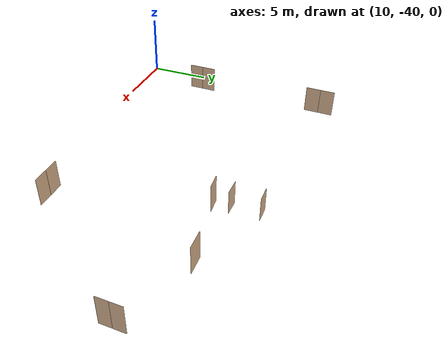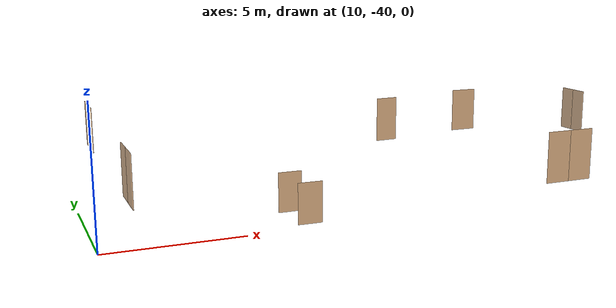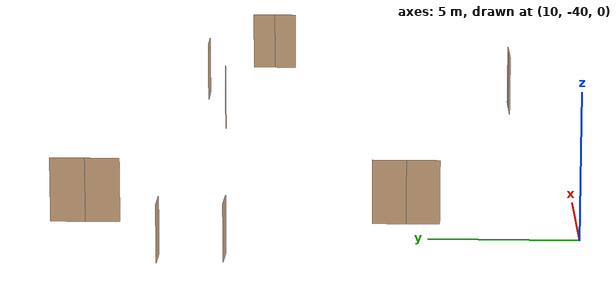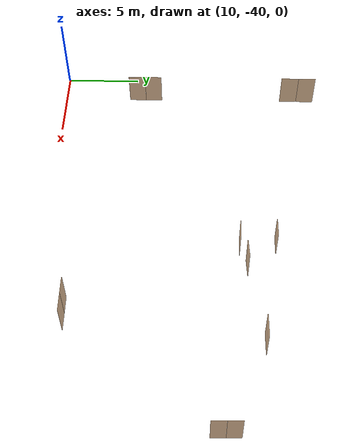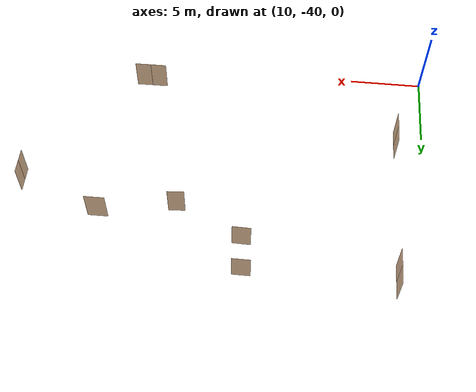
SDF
<sdf version="1.7">
 <world name="sim_world">
  <model name="puerta1">
   <pose>11.962999429963212 -23.477530657144076 0.0 0 0 1.565005116263231</pose>
   <link name="right">
    <pose>0.5918117585810255 0 1.11 0 0 0</pose>
    <visual name="right_visual">
     <geometry><box><size>1.173623517162051 0.03 2.2</size></box></geometry>
     <material>
      <ambient>0.5 0.25 0 0.6</ambient>
      <diffuse>0.5 0.25 0 0.6</diffuse>
      <pbr><metal><metalness>0.0</metalness></metal></pbr>
     </material>
    </visual>
    <collision name="right_collision">
     <geometry><box><size>1.173623517162051 0.03 2.2</size></box></geometry>
     <surface><contact><collide_bitmask>0x02</collide_bitmask></contact></surface>
    </collision>
    <inertial>
     <mass>50.0</mass>
     <inertia><ixx>20.17041666666667</ixx><iyy>25.905800666815935</iyy><izz>5.742884000149264</izz></inertia>
    </inertial>
   </link>
   <joint name="right_joint" type="revolute">
    <parent>world</parent>
    <child>right</child>
    <axis><xyz>0 0 1</xyz><limit><lower>0</lower><upper>1.57</upper></limit></axis>
    <pose>0.5918117585810255 0 0 0 0 0</pose>
   </joint>
   <link name="left">
    <pose>-0.5918117585810255 0 1.11 0 0 0</pose>
    <visual name="left_visual">
     <geometry><box><size>1.173623517162051 0.03 2.2</size></box></geometry>
     <material>
      <ambient>0.5 0.25 0 0.6</ambient>
      <diffuse>0.5 0.25 0 0.6</diffuse>
      <pbr><metal><metalness>0.0</metalness></metal></pbr>
     </material>
    </visual>
    <collision name="left_collision">
     <geometry><box><size>1.173623517162051 0.03 2.2</size></box></geometry>
     <surface><contact><collide_bitmask>0x02</collide_bitmask></contact></surface>
    </collision>
    <inertial>
     <mass>50.0</mass>
     <inertia><ixx>20.17041666666667</ixx><iyy>25.905800666815935</iyy><izz>5.742884000149264</izz></inertia>
    </inertial>
   </link>
   <joint name="left_joint" type="revolute">
    <parent>world</parent>
    <child>left</child>
    <axis><xyz>0 0 1</xyz><limit><lower>-1.57</lower><upper>0</upper></limit></axis>
    <pose>-0.5918117585810255 0 0 0 0 0</pose>
   </joint>
   <plugin name="register_component" filename="libregister_component.so">
    <component name="Door">
     <v_max_door>0.5</v_max_door>
     <a_max_door>0.3</a_max_door>
     <a_nom_door>0.15</a_nom_door>
     <dx_min_door>0.01</dx_min_door>
     <f_max_door>500.0</f_max_door>
     <ros_interface>true</ros_interface>
     <door name="puerta1" type="DoubleSwingDoor" left_joint_name="left_joint" right_joint_name="right_joint"/>
    </component>
   </plugin>
  </model>
  <model name="puerta7">
   <pose>11.955897525286552 -34.2723433223252 0.0 0 0 -1.5739164575395352</pose>
   <link name="right">
    <pose>0.5718709967881908 0 1.11 0 0 0</pose>
    <visual name="right_visual">
     <geometry><box><size>1.1337419935763815 0.03 2.2</size></box></geometry>
     <material>
      <ambient>0.5 0.25 0 0.6</ambient>
      <diffuse>0.5 0.25 0 0.6</diffuse>
      <pbr><metal><metalness>0.0</metalness></metal></pbr>
     </material>
    </visual>
    <collision name="right_collision">
     <geometry><box><size>1.1337419935763815 0.03 2.2</size></box></geometry>
     <surface><contact><collide_bitmask>0x02</collide_bitmask></contact></surface>
    </collision>
    <inertial>
     <mass>50.0</mass>
     <inertia><ixx>20.17041666666667</ixx><iyy>25.522378783327287</iyy><izz>5.359462116660616</izz></inertia>
    </inertial>
   </link>
   <joint name="right_joint" type="revolute">
    <parent>world</parent>
    <child>right</child>
    <axis><xyz>0 0 -1</xyz><limit><lower>0</lower><upper>1.57</upper></limit></axis>
    <pose>0.5718709967881908 0 0 0 0 0</pose>
   </joint>
   <link name="left">
    <pose>-0.5718709967881908 0 1.11 0 0 0</pose>
    <visual name="left_visual">
     <geometry><box><size>1.1337419935763815 0.03 2.2</size></box></geometry>
     <material>
      <ambient>0.5 0.25 0 0.6</ambient>
      <diffuse>0.5 0.25 0 0.6</diffuse>
      <pbr><metal><metalness>0.0</metalness></metal></pbr>
     </material>
    </visual>
    <collision name="left_collision">
     <geometry><box><size>1.1337419935763815 0.03 2.2</size></box></geometry>
     <surface><contact><collide_bitmask>0x02</collide_bitmask></contact></surface>
    </collision>
    <inertial>
     <mass>50.0</mass>
     <inertia><ixx>20.17041666666667</ixx><iyy>25.522378783327287</iyy><izz>5.359462116660616</izz></inertia>
    </inertial>
   </link>
   <joint name="left_joint" type="revolute">
    <parent>world</parent>
    <child>left</child>
    <axis><xyz>0 0 -1</xyz><limit><lower>-1.57</lower><upper>0</upper></limit></axis>
    <pose>-0.5718709967881908 0 0 0 0 0</pose>
   </joint>
   <plugin name="register_component" filename="libregister_component.so">
    <component name="Door">
     <v_max_door>0.5</v_max_door>
     <a_max_door>0.3</a_max_door>
     <a_nom_door>0.15</a_nom_door>
     <dx_min_door>0.01</dx_min_door>
     <f_max_door>500.0</f_max_door>
     <ros_interface>true</ros_interface>
     <door name="puerta7" type="DoubleSwingDoor" left_joint_name="left_joint" right_joint_name="right_joint"/>
    </component>
   </plugin>
  </model>
  <model name="puerta6">
   <pose>29.790228815595462 -38.21295820829428 0.0 0 0 0.010102703109197853</pose>
   <link name="right">
    <pose>0.5549249820248885 0 1.11 0 0 0</pose>
    <visual name="right_visual">
     <geometry><box><size>1.099849964049777 0.03 2.2</size></box></geometry>
     <material>
      <ambient>0.5 0.25 0 0.6</ambient>
      <diffuse>0.5 0.25 0 0.6</diffuse>
      <pbr><metal><metalness>0.0</metalness></metal></pbr>
     </material>
    </visual>
    <collision name="right_collision">
     <geometry><box><size>1.099849964049777 0.03 2.2</size></box></geometry>
     <surface><contact><collide_bitmask>0x02</collide_bitmask></contact></surface>
    </collision>
    <inertial>
     <mass>50.0</mass>
     <inertia><ixx>20.17041666666667</ixx><iyy>25.206958097584568</iyy><izz>5.044041430917899</izz></inertia>
    </inertial>
   </link>
   <joint name="right_joint" type="revolute">
    <parent>world</parent>
    <child>right</child>
    <axis><xyz>0 0 -1</xyz><limit><lower>0</lower><upper>1.57</upper></limit></axis>
    <pose>0.5549249820248885 0 0 0 0 0</pose>
   </joint>
   <link name="left">
    <pose>-0.5549249820248885 0 1.11 0 0 0</pose>
    <visual name="left_visual">
     <geometry><box><size>1.099849964049777 0.03 2.2</size></box></geometry>
     <material>
      <ambient>0.5 0.25 0 0.6</ambient>
      <diffuse>0.5 0.25 0 0.6</diffuse>
      <pbr><metal><metalness>0.0</metalness></metal></pbr>
     </material>
    </visual>
    <collision name="left_collision">
     <geometry><box><size>1.099849964049777 0.03 2.2</size></box></geometry>
     <surface><contact><collide_bitmask>0x02</collide_bitmask></contact></surface>
    </collision>
    <inertial>
     <mass>50.0</mass>
     <inertia><ixx>20.17041666666667</ixx><iyy>25.206958097584568</iyy><izz>5.044041430917899</izz></inertia>
    </inertial>
   </link>
   <joint name="left_joint" type="revolute">
    <parent>world</parent>
    <child>left</child>
    <axis><xyz>0 0 -1</xyz><limit><lower>-1.57</lower><upper>0</upper></limit></axis>
    <pose>-0.5549249820248885 0 0 0 0 0</pose>
   </joint>
   <plugin name="register_component" filename="libregister_component.so">
    <component name="Door">
     <v_max_door>0.5</v_max_door>
     <a_max_door>0.3</a_max_door>
     <a_nom_door>0.15</a_nom_door>
     <dx_min_door>0.01</dx_min_door>
     <f_max_door>500.0</f_max_door>
     <ros_interface>true</ros_interface>
     <door name="puerta6" type="DoubleSwingDoor" left_joint_name="left_joint" right_joint_name="right_joint"/>
    </component>
   </plugin>
  </model>
  <model name="puertaB4">
   <pose>37.19075503964348 -28.809400424936527 0.0 0 0 -1.560095286636433</pose>
   <link name="right">
    <pose>0.432546071391894 0 1.11 0 0 0</pose>
    <visual name="right_visual">
     <geometry><box><size>0.855092142783788 0.03 2.2</size></box></geometry>
     <material>
      <ambient>0.5 0.25 0 0.6</ambient>
      <diffuse>0.5 0.25 0 0.6</diffuse>
      <pbr><metal><metalness>0.0</metalness></metal></pbr>
     </material>
    </visual>
    <collision name="right_collision">
     <geometry><box><size>0.855092142783788 0.03 2.2</size></box></geometry>
     <surface><contact><collide_bitmask>0x02</collide_bitmask></contact></surface>
    </collision>
    <inertial>
     <mass>50.0</mass>
     <inertia><ixx>20.17041666666667</ixx><iyy>23.21326071937738</iyy><izz>3.050344052710709</izz></inertia>
    </inertial>
   </link>
   <joint name="right_joint" type="revolute">
    <parent>world</parent>
    <child>right</child>
    <axis><xyz>0 0 -1</xyz><limit><lower>0</lower><upper>1.57</upper></limit></axis>
    <pose>0.432546071391894 0 0 0 0 0</pose>
   </joint>
   <link name="left">
    <pose>-0.432546071391894 0 1.11 0 0 0</pose>
    <visual name="left_visual">
     <geometry><box><size>0.855092142783788 0.03 2.2</size></box></geometry>
     <material>
      <ambient>0.5 0.25 0 0.6</ambient>
      <diffuse>0.5 0.25 0 0.6</diffuse>
      <pbr><metal><metalness>0.0</metalness></metal></pbr>
     </material>
    </visual>
    <collision name="left_collision">
     <geometry><box><size>0.855092142783788 0.03 2.2</size></box></geometry>
     <surface><contact><collide_bitmask>0x02</collide_bitmask></contact></surface>
    </collision>
    <inertial>
     <mass>50.0</mass>
     <inertia><ixx>20.17041666666667</ixx><iyy>23.21326071937738</iyy><izz>3.050344052710709</izz></inertia>
    </inertial>
   </link>
   <joint name="left_joint" type="revolute">
    <parent>world</parent>
    <child>left</child>
    <axis><xyz>0 0 -1</xyz><limit><lower>-1.57</lower><upper>0</upper></limit></axis>
    <pose>-0.432546071391894 0 0 0 0 0</pose>
   </joint>
   <plugin name="register_component" filename="libregister_component.so">
    <component name="Door">
     <v_max_door>0.5</v_max_door>
     <a_max_door>0.3</a_max_door>
     <a_nom_door>0.15</a_nom_door>
     <dx_min_door>0.01</dx_min_door>
     <f_max_door>500.0</f_max_door>
     <ros_interface>true</ros_interface>
     <door name="puertaB4" type="DoubleSwingDoor" left_joint_name="left_joint" right_joint_name="right_joint"/>
    </component>
   </plugin>
  </model>
  <model name="puertaEA">
   <pose>26.458987972694775 -27.398771358713326 0.0 0 0 0.06506101426287529</pose>
   <link name="right">
    <pose>0 0 1.11 0 0 0</pose>
    <visual name="right_visual">
     <geometry><box><size>1.1211130812435688 0.03 2.2</size></box></geometry>
     <material>
      <ambient>0.5 0.25 0 0.6</ambient>
      <diffuse>0.5 0.25 0 0.6</diffuse>
      <pbr><metal><metalness>0.0</metalness></metal></pbr>
     </material>
    </visual>
    <collision name="right_collision">
     <geometry><box><size>1.1211130812435688 0.03 2.2</size></box></geometry>
     <surface><contact><collide_bitmask>0x02</collide_bitmask></contact></surface>
    </collision>
    <inertial>
     <mass>50.0</mass>
     <inertia><ixx>20.17041666666667</ixx><iyy>25.40372725389771</iyy><izz>5.240810587231037</izz></inertia>
    </inertial>
   </link>
   <joint name="right_joint" type="revolute">
    <parent>world</parent>
    <child>right</child>
    <axis><xyz>0 0 -1</xyz><limit><lower>0</lower><upper>1.57</upper></limit></axis>
    <pose>0.5655565406217844 0 0 0 0 0</pose>
   </joint>
   <plugin name="register_component" filename="libregister_component.so">
    <component name="Door">
     <v_max_door>0.5</v_max_door>
     <a_max_door>0.3</a_max_door>
     <a_nom_door>0.15</a_nom_door>
     <dx_min_door>0.01</dx_min_door>
     <f_max_door>500.0</f_max_door>
     <ros_interface>true</ros_interface>
     <door name="puertaEA" type="SwingDoor" left_joint_name="empty_joint" right_joint_name="right_joint"/>
    </component>
   </plugin>
  </model>
  <model name="puerta2">
   <pose>31.62593573188485 -26.463345691982276 0.0 0 0 0.010278512859814274</pose>
   <link name="right">
    <pose>0 0 1.11 0 0 0</pose>
    <visual name="right_visual">
     <geometry><box><size>1.355875595919269 0.03 2.2</size></box></geometry>
     <material>
      <ambient>0.5 0.25 0 0.6</ambient>
      <diffuse>0.5 0.25 0 0.6</diffuse>
      <pbr><metal><metalness>0.0</metalness></metal></pbr>
     </material>
    </visual>
    <collision name="right_collision">
     <geometry><box><size>1.355875595919269 0.03 2.2</size></box></geometry>
     <surface><contact><collide_bitmask>0x02</collide_bitmask></contact></surface>
    </collision>
    <inertial>
     <mass>50.0</mass>
     <inertia><ixx>20.17041666666667</ixx><iyy>27.82666096503931</iyy><izz>7.663744298372636</izz></inertia>
    </inertial>
   </link>
   <joint name="right_joint" type="revolute">
    <parent>world</parent>
    <child>right</child>
    <axis><xyz>0 0 -1</xyz><limit><lower>0</lower><upper>1.57</upper></limit></axis>
    <pose>0.6829377979596345 0 0 0 0 0</pose>
   </joint>
   <plugin name="register_component" filename="libregister_component.so">
    <component name="Door">
     <v_max_door>0.5</v_max_door>
     <a_max_door>0.3</a_max_door>
     <a_nom_door>0.15</a_nom_door>
     <dx_min_door>0.01</dx_min_door>
     <f_max_door>500.0</f_max_door>
     <ros_interface>true</ros_interface>
     <door name="puerta2" type="SwingDoor" left_joint_name="empty_joint" right_joint_name="right_joint"/>
    </component>
   </plugin>
  </model>
  <model name="prueta-s10">
   <pose>21.92129237993227 -25.10320048827763 -4.0 0 0 3.1414374505707454</pose>
   <link name="right">
    <pose>0 0 1.11 0 0 0</pose>
    <visual name="right_visual">
     <geometry><box><size>1.3146919536133659 0.03 2.2</size></box></geometry>
     <material>
      <ambient>0.5 0.25 0 0.6</ambient>
      <diffuse>0.5 0.25 0 0.6</diffuse>
      <pbr><metal><metalness>0.0</metalness></metal></pbr>
     </material>
    </visual>
    <collision name="right_collision">
     <geometry><box><size>1.3146919536133659 0.03 2.2</size></box></geometry>
     <surface><contact><collide_bitmask>0x02</collide_bitmask></contact></surface>
    </collision>
    <inertial>
     <mass>50.0</mass>
     <inertia><ixx>20.17041666666667</ixx><iyy>27.368395553732206</iyy><izz>7.205478887065536</izz></inertia>
    </inertial>
   </link>
   <joint name="right_joint" type="revolute">
    <parent>world</parent>
    <child>right</child>
    <axis><xyz>0 0 1</xyz><limit><lower>0</lower><upper>1.57</upper></limit></axis>
    <pose>0.662345976806683 0 0 0 0 0</pose>
   </joint>
   <plugin name="register_component" filename="libregister_component.so">
    <component name="Door">
     <v_max_door>0.5</v_max_door>
     <a_max_door>0.3</a_max_door>
     <a_nom_door>0.15</a_nom_door>
     <dx_min_door>0.01</dx_min_door>
     <f_max_door>500.0</f_max_door>
     <ros_interface>true</ros_interface>
     <door name="prueta-s10" type="SwingDoor" left_joint_name="empty_joint" right_joint_name="right_joint"/>
    </component>
   </plugin>
  </model>
  <model name="prueta-s11">
   <pose>22.11906218434565 -27.566535455570595 -4.0 0 0 3.120320365945217</pose>
   <link name="right">
    <pose>0 0 1.11 0 0 0</pose>
    <visual name="right_visual">
     <geometry><box><size>1.3247090317254433 0.03 2.2</size></box></geometry>
     <material>
      <ambient>0.5 0.25 0 0.6</ambient>
      <diffuse>0.5 0.25 0 0.6</diffuse>
      <pbr><metal><metalness>0.0</metalness></metal></pbr>
     </material>
    </visual>
    <collision name="right_collision">
     <geometry><box><size>1.3247090317254433 0.03 2.2</size></box></geometry>
     <surface><contact><collide_bitmask>0x02</collide_bitmask></contact></surface>
    </collision>
    <inertial>
     <mass>50.0</mass>
     <inertia><ixx>20.17041666666667</ixx><iyy>27.478558411395674</iyy><izz>7.315641744729007</izz></inertia>
    </inertial>
   </link>
   <joint name="right_joint" type="revolute">
    <parent>world</parent>
    <child>right</child>
    <axis><xyz>0 0 1</xyz><limit><lower>0</lower><upper>1.57</upper></limit></axis>
    <pose>0.6673545158627217 0 0 0 0 0</pose>
   </joint>
   <plugin name="register_component" filename="libregister_component.so">
    <component name="Door">
     <v_max_door>0.5</v_max_door>
     <a_max_door>0.3</a_max_door>
     <a_nom_door>0.15</a_nom_door>
     <dx_min_door>0.01</dx_min_door>
     <f_max_door>500.0</f_max_door>
     <ros_interface>true</ros_interface>
     <door name="prueta-s11" type="SwingDoor" left_joint_name="empty_joint" right_joint_name="right_joint"/>
    </component>
   </plugin>
  </model>
 </world>
</sdf>
